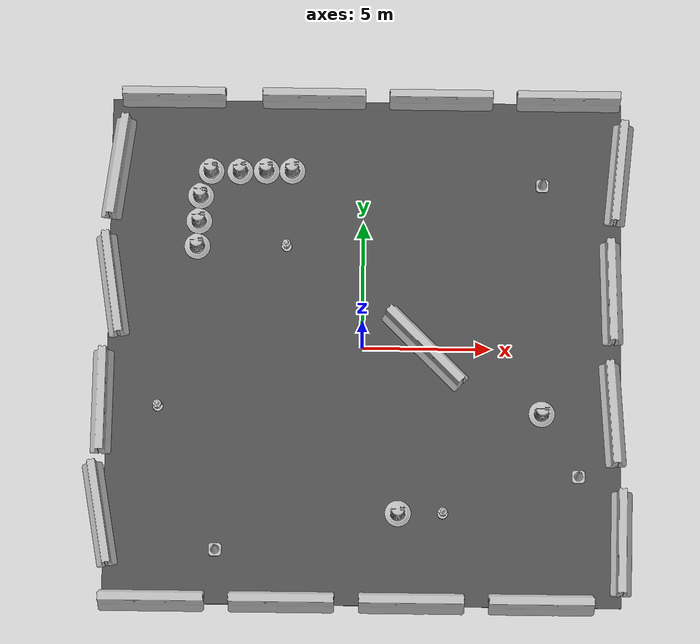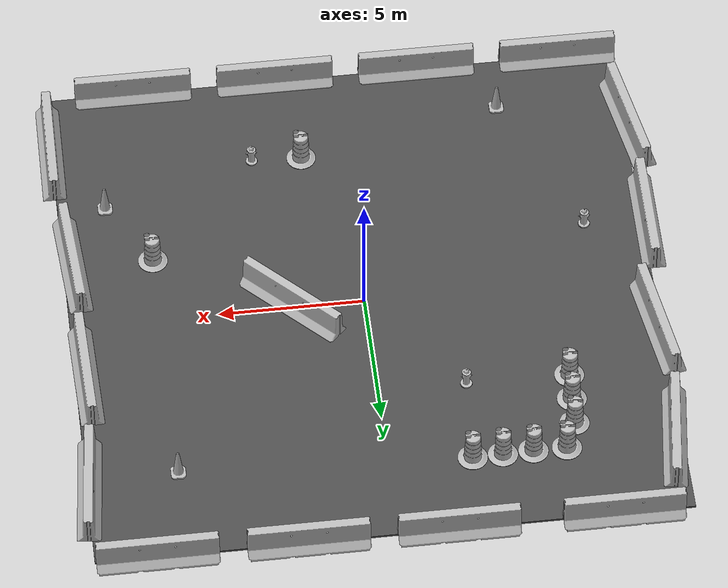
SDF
<sdf version="1.6">
 <world name="default">
  <light name="sun" type="directional">
   <pose>0 0 10 0 -0 0</pose>
   <diffuse>0.8 0.8 0.8 1</diffuse>
   <specular>0.2 0.2 0.2 1</specular>
   <attenuation>
    <range>1000</range>
    <constant>0.9</constant>
    <linear>0.01</linear>
    <quadratic>0.001</quadratic>
   </attenuation>
   <direction>-0.5 0.1 -0.9</direction>
  </light>
  <model name="ground_plane">
   <static>1</static>
   <link name="link">
    <collision name="collision">
     <geometry><plane><normal>0 0 1</normal><size>100 100</size></plane></geometry>
     <surface><friction><ode><mu>100</mu><mu2>50</mu2></ode></friction></surface>
    </collision>
    <visual name="visual">
     <cast_shadows>0</cast_shadows>
     <geometry><plane><normal>0 0 1</normal><size>100 100</size></plane></geometry>
     <material>
      <script><uri>file://media/materials/scripts/gazebo.material</uri><name>Gazebo/Grey</name></script>
     </material>
    </visual>
    <velocity_decay><linear>0</linear><angular>0</angular></velocity_decay>
   </link>
  </model>
  <physics name="default_physics" default="0" type="ode">
   <max_step_size>0.004</max_step_size>
   <real_time_factor>1</real_time_factor>
   <real_time_update_rate>250</real_time_update_rate>
  </physics>
  <scene><ambient>0.4 0.4 0.4 1</ambient><background>0.7 0.7 0.7 1</background><shadows>1</shadows></scene>
  <model name="jersey_barrier">
   <static>1</static>
   <link name="link">
    <visual name="visual">
     <geometry><mesh><uri>model://jersey_barrier/meshes/jersey_barrier.dae</uri></mesh></geometry>
    </visual>
    <collision name="upright">
     <pose>0 0 0.5715 0 -0 0</pose>
     <geometry><box><size>4.06542 0.3063 1.143</size></box></geometry>
    </collision>
    <collision name="base">
     <pose>0 0 0.032258 0 -0 0</pose>
     <geometry><box><size>4.06542 0.8107 0.064516</size></box></geometry>
    </collision>
    <collision name="base2">
     <pose>0 0 0.1 0 -0 0</pose>
     <geometry><box><size>4.06542 0.65 0.1</size></box></geometry>
    </collision>
    <collision name="base3">
     <pose>0 0 0.2 0 -0 0</pose>
     <geometry><box><size>4.06542 0.5 0.1</size></box></geometry>
    </collision>
    <collision name="left-angle">
     <pose>0 -0.224 0.2401 0.9 -0 0</pose>
     <geometry><box><size>4.06542 0.5 0.064516</size></box></geometry>
    </collision>
    <collision name="right-angle">
     <pose>0 0.224 0.2401 -0.9 0 0</pose>
     <geometry><box><size>4.06542 0.5 0.064516</size></box></geometry>
    </collision>
    <velocity_decay><linear>0</linear><angular>0</angular></velocity_decay>
   </link>
   <pose>-8 -10 0 0 -0 0</pose>
  </model>
  <model name="jersey_barrier_0">
   <static>1</static>
   <link name="link">
    <visual name="visual">
     <geometry><mesh><uri>model://jersey_barrier/meshes/jersey_barrier.dae</uri></mesh></geometry>
    </visual>
    <collision name="upright">
     <pose>0 0 0.5715 0 -0 0</pose>
     <geometry><box><size>4.06542 0.3063 1.143</size></box></geometry>
    </collision>
    <collision name="base">
     <pose>0 0 0.032258 0 -0 0</pose>
     <geometry><box><size>4.06542 0.8107 0.064516</size></box></geometry>
    </collision>
    <collision name="base2">
     <pose>0 0 0.1 0 -0 0</pose>
     <geometry><box><size>4.06542 0.65 0.1</size></box></geometry>
    </collision>
    <collision name="base3">
     <pose>0 0 0.2 0 -0 0</pose>
     <geometry><box><size>4.06542 0.5 0.1</size></box></geometry>
    </collision>
    <collision name="left-angle">
     <pose>0 -0.224 0.2401 0.9 -0 0</pose>
     <geometry><box><size>4.06542 0.5 0.064516</size></box></geometry>
    </collision>
    <collision name="right-angle">
     <pose>0 0.224 0.2401 -0.9 0 0</pose>
     <geometry><box><size>4.06542 0.5 0.064516</size></box></geometry>
    </collision>
    <velocity_decay><linear>0</linear><angular>0</angular></velocity_decay>
   </link>
   <pose>-3 -10 0 0 -0 0</pose>
  </model>
  <model name="jersey_barrier_1">
   <static>1</static>
   <link name="link">
    <visual name="visual">
     <geometry><mesh><uri>model://jersey_barrier/meshes/jersey_barrier.dae</uri></mesh></geometry>
    </visual>
    <collision name="upright">
     <pose>0 0 0.5715 0 -0 0</pose>
     <geometry><box><size>4.06542 0.3063 1.143</size></box></geometry>
    </collision>
    <collision name="base">
     <pose>0 0 0.032258 0 -0 0</pose>
     <geometry><box><size>4.06542 0.8107 0.064516</size></box></geometry>
    </collision>
    <collision name="base2">
     <pose>0 0 0.1 0 -0 0</pose>
     <geometry><box><size>4.06542 0.65 0.1</size></box></geometry>
    </collision>
    <collision name="base3">
     <pose>0 0 0.2 0 -0 0</pose>
     <geometry><box><size>4.06542 0.5 0.1</size></box></geometry>
    </collision>
    <collision name="left-angle">
     <pose>0 -0.224 0.2401 0.9 -0 0</pose>
     <geometry><box><size>4.06542 0.5 0.064516</size></box></geometry>
    </collision>
    <collision name="right-angle">
     <pose>0 0.224 0.2401 -0.9 0 0</pose>
     <geometry><box><size>4.06542 0.5 0.064516</size></box></geometry>
    </collision>
    <velocity_decay><linear>0</linear><angular>0</angular></velocity_decay>
   </link>
   <pose>2 -10 0 0 -0 0</pose>
  </model>
  <model name="jersey_barrier_2">
   <static>1</static>
   <link name="link">
    <visual name="visual">
     <geometry><mesh><uri>model://jersey_barrier/meshes/jersey_barrier.dae</uri></mesh></geometry>
    </visual>
    <collision name="upright">
     <pose>0 0 0.5715 0 -0 0</pose>
     <geometry><box><size>4.06542 0.3063 1.143</size></box></geometry>
    </collision>
    <collision name="base">
     <pose>0 0 0.032258 0 -0 0</pose>
     <geometry><box><size>4.06542 0.8107 0.064516</size></box></geometry>
    </collision>
    <collision name="base2">
     <pose>0 0 0.1 0 -0 0</pose>
     <geometry><box><size>4.06542 0.65 0.1</size></box></geometry>
    </collision>
    <collision name="base3">
     <pose>0 0 0.2 0 -0 0</pose>
     <geometry><box><size>4.06542 0.5 0.1</size></box></geometry>
    </collision>
    <collision name="left-angle">
     <pose>0 -0.224 0.2401 0.9 -0 0</pose>
     <geometry><box><size>4.06542 0.5 0.064516</size></box></geometry>
    </collision>
    <collision name="right-angle">
     <pose>0 0.224 0.2401 -0.9 0 0</pose>
     <geometry><box><size>4.06542 0.5 0.064516</size></box></geometry>
    </collision>
    <velocity_decay><linear>0</linear><angular>0</angular></velocity_decay>
   </link>
   <pose>7 -10 0 0 -0 0</pose>
  </model>
  <model name="jersey_barrier_3">
   <static>1</static>
   <link name="link">
    <visual name="visual">
     <geometry><mesh><uri>model://jersey_barrier/meshes/jersey_barrier.dae</uri></mesh></geometry>
    </visual>
    <collision name="upright">
     <pose>0 0 0.5715 0 -0 0</pose>
     <geometry><box><size>4.06542 0.3063 1.143</size></box></geometry>
    </collision>
    <collision name="base">
     <pose>0 0 0.032258 0 -0 0</pose>
     <geometry><box><size>4.06542 0.8107 0.064516</size></box></geometry>
    </collision>
    <collision name="base2">
     <pose>0 0 0.1 0 -0 0</pose>
     <geometry><box><size>4.06542 0.65 0.1</size></box></geometry>
    </collision>
    <collision name="base3">
     <pose>0 0 0.2 0 -0 0</pose>
     <geometry><box><size>4.06542 0.5 0.1</size></box></geometry>
    </collision>
    <collision name="left-angle">
     <pose>0 -0.224 0.2401 0.9 -0 0</pose>
     <geometry><box><size>4.06542 0.5 0.064516</size></box></geometry>
    </collision>
    <collision name="right-angle">
     <pose>0 0.224 0.2401 -0.9 0 0</pose>
     <geometry><box><size>4.06542 0.5 0.064516</size></box></geometry>
    </collision>
    <velocity_decay><linear>0</linear><angular>0</angular></velocity_decay>
   </link>
   <pose>-7.50675 10 0 0 -0 0</pose>
  </model>
  <model name="jersey_barrier_4">
   <static>1</static>
   <link name="link">
    <visual name="visual">
     <geometry><mesh><uri>model://jersey_barrier/meshes/jersey_barrier.dae</uri></mesh></geometry>
    </visual>
    <collision name="upright">
     <pose>0 0 0.5715 0 -0 0</pose>
     <geometry><box><size>4.06542 0.3063 1.143</size></box></geometry>
    </collision>
    <collision name="base">
     <pose>0 0 0.032258 0 -0 0</pose>
     <geometry><box><size>4.06542 0.8107 0.064516</size></box></geometry>
    </collision>
    <collision name="base2">
     <pose>0 0 0.1 0 -0 0</pose>
     <geometry><box><size>4.06542 0.65 0.1</size></box></geometry>
    </collision>
    <collision name="base3">
     <pose>0 0 0.2 0 -0 0</pose>
     <geometry><box><size>4.06542 0.5 0.1</size></box></geometry>
    </collision>
    <collision name="left-angle">
     <pose>0 -0.224 0.2401 0.9 -0 0</pose>
     <geometry><box><size>4.06542 0.5 0.064516</size></box></geometry>
    </collision>
    <collision name="right-angle">
     <pose>0 0.224 0.2401 -0.9 0 0</pose>
     <geometry><box><size>4.06542 0.5 0.064516</size></box></geometry>
    </collision>
    <velocity_decay><linear>0</linear><angular>0</angular></velocity_decay>
   </link>
   <pose>-2 10 0 0 -0 0</pose>
  </model>
  <model name="jersey_barrier_5">
   <static>1</static>
   <link name="link">
    <visual name="visual">
     <geometry><mesh><uri>model://jersey_barrier/meshes/jersey_barrier.dae</uri></mesh></geometry>
    </visual>
    <collision name="upright">
     <pose>0 0 0.5715 0 -0 0</pose>
     <geometry><box><size>4.06542 0.3063 1.143</size></box></geometry>
    </collision>
    <collision name="base">
     <pose>0 0 0.032258 0 -0 0</pose>
     <geometry><box><size>4.06542 0.8107 0.064516</size></box></geometry>
    </collision>
    <collision name="base2">
     <pose>0 0 0.1 0 -0 0</pose>
     <geometry><box><size>4.06542 0.65 0.1</size></box></geometry>
    </collision>
    <collision name="base3">
     <pose>0 0 0.2 0 -0 0</pose>
     <geometry><box><size>4.06542 0.5 0.1</size></box></geometry>
    </collision>
    <collision name="left-angle">
     <pose>0 -0.224 0.2401 0.9 -0 0</pose>
     <geometry><box><size>4.06542 0.5 0.064516</size></box></geometry>
    </collision>
    <collision name="right-angle">
     <pose>0 0.224 0.2401 -0.9 0 0</pose>
     <geometry><box><size>4.06542 0.5 0.064516</size></box></geometry>
    </collision>
    <velocity_decay><linear>0</linear><angular>0</angular></velocity_decay>
   </link>
   <pose>3 10 0 0 -0 0</pose>
  </model>
  <model name="jersey_barrier_6">
   <static>1</static>
   <link name="link">
    <visual name="visual">
     <geometry><mesh><uri>model://jersey_barrier/meshes/jersey_barrier.dae</uri></mesh></geometry>
    </visual>
    <collision name="upright">
     <pose>0 0 0.5715 0 -0 0</pose>
     <geometry><box><size>4.06542 0.3063 1.143</size></box></geometry>
    </collision>
    <collision name="base">
     <pose>0 0 0.032258 0 -0 0</pose>
     <geometry><box><size>4.06542 0.8107 0.064516</size></box></geometry>
    </collision>
    <collision name="base2">
     <pose>0 0 0.1 0 -0 0</pose>
     <geometry><box><size>4.06542 0.65 0.1</size></box></geometry>
    </collision>
    <collision name="base3">
     <pose>0 0 0.2 0 -0 0</pose>
     <geometry><box><size>4.06542 0.5 0.1</size></box></geometry>
    </collision>
    <collision name="left-angle">
     <pose>0 -0.224 0.2401 0.9 -0 0</pose>
     <geometry><box><size>4.06542 0.5 0.064516</size></box></geometry>
    </collision>
    <collision name="right-angle">
     <pose>0 0.224 0.2401 -0.9 0 0</pose>
     <geometry><box><size>4.06542 0.5 0.064516</size></box></geometry>
    </collision>
    <velocity_decay><linear>0</linear><angular>0</angular></velocity_decay>
   </link>
   <pose>8 10 0 0 -0 0</pose>
  </model>
  <model name="jersey_barrier_7">
   <static>1</static>
   <link name="link">
    <visual name="visual">
     <geometry><mesh><uri>model://jersey_barrier/meshes/jersey_barrier.dae</uri></mesh></geometry>
    </visual>
    <collision name="upright">
     <pose>0 0 0.5715 0 -0 0</pose>
     <geometry><box><size>4.06542 0.3063 1.143</size></box></geometry>
    </collision>
    <collision name="base">
     <pose>0 0 0.032258 0 -0 0</pose>
     <geometry><box><size>4.06542 0.8107 0.064516</size></box></geometry>
    </collision>
    <collision name="base2">
     <pose>0 0 0.1 0 -0 0</pose>
     <geometry><box><size>4.06542 0.65 0.1</size></box></geometry>
    </collision>
    <collision name="base3">
     <pose>0 0 0.2 0 -0 0</pose>
     <geometry><box><size>4.06542 0.5 0.1</size></box></geometry>
    </collision>
    <collision name="left-angle">
     <pose>0 -0.224 0.2401 0.9 -0 0</pose>
     <geometry><box><size>4.06542 0.5 0.064516</size></box></geometry>
    </collision>
    <collision name="right-angle">
     <pose>0 0.224 0.2401 -0.9 0 0</pose>
     <geometry><box><size>4.06542 0.5 0.064516</size></box></geometry>
    </collision>
    <velocity_decay><linear>0</linear><angular>0</angular></velocity_decay>
   </link>
   <pose>9.74902 -2.57759 0 0 -0 1.64</pose>
  </model>
  <model name="jersey_barrier_8">
   <static>1</static>
   <link name="link">
    <visual name="visual">
     <geometry><mesh><uri>model://jersey_barrier/meshes/jersey_barrier.dae</uri></mesh></geometry>
    </visual>
    <collision name="upright">
     <pose>0 0 0.5715 0 -0 0</pose>
     <geometry><box><size>4.06542 0.3063 1.143</size></box></geometry>
    </collision>
    <collision name="base">
     <pose>0 0 0.032258 0 -0 0</pose>
     <geometry><box><size>4.06542 0.8107 0.064516</size></box></geometry>
    </collision>
    <collision name="base2">
     <pose>0 0 0.1 0 -0 0</pose>
     <geometry><box><size>4.06542 0.65 0.1</size></box></geometry>
    </collision>
    <collision name="base3">
     <pose>0 0 0.2 0 -0 0</pose>
     <geometry><box><size>4.06542 0.5 0.1</size></box></geometry>
    </collision>
    <collision name="left-angle">
     <pose>0 -0.224 0.2401 0.9 -0 0</pose>
     <geometry><box><size>4.06542 0.5 0.064516</size></box></geometry>
    </collision>
    <collision name="right-angle">
     <pose>0 0.224 0.2401 -0.9 0 0</pose>
     <geometry><box><size>4.06542 0.5 0.064516</size></box></geometry>
    </collision>
    <velocity_decay><linear>0</linear><angular>0</angular></velocity_decay>
   </link>
   <pose>9.70141 2.24369 0 0 -0 1.6</pose>
  </model>
  <model name="jersey_barrier_9">
   <static>1</static>
   <link name="link">
    <visual name="visual">
     <geometry><mesh><uri>model://jersey_barrier/meshes/jersey_barrier.dae</uri></mesh></geometry>
    </visual>
    <collision name="upright">
     <pose>0 0 0.5715 0 -0 0</pose>
     <geometry><box><size>4.06542 0.3063 1.143</size></box></geometry>
    </collision>
    <collision name="base">
     <pose>0 0 0.032258 0 -0 0</pose>
     <geometry><box><size>4.06542 0.8107 0.064516</size></box></geometry>
    </collision>
    <collision name="base2">
     <pose>0 0 0.1 0 -0 0</pose>
     <geometry><box><size>4.06542 0.65 0.1</size></box></geometry>
    </collision>
    <collision name="base3">
     <pose>0 0 0.2 0 -0 0</pose>
     <geometry><box><size>4.06542 0.5 0.1</size></box></geometry>
    </collision>
    <collision name="left-angle">
     <pose>0 -0.224 0.2401 0.9 -0 0</pose>
     <geometry><box><size>4.06542 0.5 0.064516</size></box></geometry>
    </collision>
    <collision name="right-angle">
     <pose>0 0.224 0.2401 -0.9 0 0</pose>
     <geometry><box><size>4.06542 0.5 0.064516</size></box></geometry>
    </collision>
    <velocity_decay><linear>0</linear><angular>0</angular></velocity_decay>
   </link>
   <pose>-10.0607 -6.69856 0 0 0 -1.4</pose>
  </model>
  <model name="jersey_barrier_10">
   <static>1</static>
   <link name="link">
    <visual name="visual">
     <geometry><mesh><uri>model://jersey_barrier/meshes/jersey_barrier.dae</uri></mesh></geometry>
    </visual>
    <collision name="upright">
     <pose>0 0 0.5715 0 -0 0</pose>
     <geometry><box><size>4.06542 0.3063 1.143</size></box></geometry>
    </collision>
    <collision name="base">
     <pose>0 0 0.032258 0 -0 0</pose>
     <geometry><box><size>4.06542 0.8107 0.064516</size></box></geometry>
    </collision>
    <collision name="base2">
     <pose>0 0 0.1 0 -0 0</pose>
     <geometry><box><size>4.06542 0.65 0.1</size></box></geometry>
    </collision>
    <collision name="base3">
     <pose>0 0 0.2 0 -0 0</pose>
     <geometry><box><size>4.06542 0.5 0.1</size></box></geometry>
    </collision>
    <collision name="left-angle">
     <pose>0 -0.224 0.2401 0.9 -0 0</pose>
     <geometry><box><size>4.06542 0.5 0.064516</size></box></geometry>
    </collision>
    <collision name="right-angle">
     <pose>0 0.224 0.2401 -0.9 0 0</pose>
     <geometry><box><size>4.06542 0.5 0.064516</size></box></geometry>
    </collision>
    <velocity_decay><linear>0</linear><angular>0</angular></velocity_decay>
   </link>
   <pose>-10.0774 -2.27159 0 0 -0 1.56</pose>
  </model>
  <model name="jersey_barrier_11">
   <static>1</static>
   <link name="link">
    <visual name="visual">
     <geometry><mesh><uri>model://jersey_barrier/meshes/jersey_barrier.dae</uri></mesh></geometry>
    </visual>
    <collision name="upright">
     <pose>0 0 0.5715 0 -0 0</pose>
     <geometry><box><size>4.06542 0.3063 1.143</size></box></geometry>
    </collision>
    <collision name="base">
     <pose>0 0 0.032258 0 -0 0</pose>
     <geometry><box><size>4.06542 0.8107 0.064516</size></box></geometry>
    </collision>
    <collision name="base2">
     <pose>0 0 0.1 0 -0 0</pose>
     <geometry><box><size>4.06542 0.65 0.1</size></box></geometry>
    </collision>
    <collision name="base3">
     <pose>0 0 0.2 0 -0 0</pose>
     <geometry><box><size>4.06542 0.5 0.1</size></box></geometry>
    </collision>
    <collision name="left-angle">
     <pose>0 -0.224 0.2401 0.9 -0 0</pose>
     <geometry><box><size>4.06542 0.5 0.064516</size></box></geometry>
    </collision>
    <collision name="right-angle">
     <pose>0 0.224 0.2401 -0.9 0 0</pose>
     <geometry><box><size>4.06542 0.5 0.064516</size></box></geometry>
    </collision>
    <velocity_decay><linear>0</linear><angular>0</angular></velocity_decay>
   </link>
   <pose>-9.77013 2.34791 0 0 -0 1.72</pose>
  </model>
  <model name="jersey_barrier_12">
   <static>1</static>
   <link name="link">
    <visual name="visual">
     <geometry><mesh><uri>model://jersey_barrier/meshes/jersey_barrier.dae</uri></mesh></geometry>
    </visual>
    <collision name="upright">
     <pose>0 0 0.5715 0 -0 0</pose>
     <geometry><box><size>4.06542 0.3063 1.143</size></box></geometry>
    </collision>
    <collision name="base">
     <pose>0 0 0.032258 0 -0 0</pose>
     <geometry><box><size>4.06542 0.8107 0.064516</size></box></geometry>
    </collision>
    <collision name="base2">
     <pose>0 0 0.1 0 -0 0</pose>
     <geometry><box><size>4.06542 0.65 0.1</size></box></geometry>
    </collision>
    <collision name="base3">
     <pose>0 0 0.2 0 -0 0</pose>
     <geometry><box><size>4.06542 0.5 0.1</size></box></geometry>
    </collision>
    <collision name="left-angle">
     <pose>0 -0.224 0.2401 0.9 -0 0</pose>
     <geometry><box><size>4.06542 0.5 0.064516</size></box></geometry>
    </collision>
    <collision name="right-angle">
     <pose>0 0.224 0.2401 -0.9 0 0</pose>
     <geometry><box><size>4.06542 0.5 0.064516</size></box></geometry>
    </collision>
    <velocity_decay><linear>0</linear><angular>0</angular></velocity_decay>
   </link>
   <pose>10.0879 -7.62159 0 0 -0 1.56</pose>
  </model>
  <model name="jersey_barrier_13">
   <static>1</static>
   <link name="link">
    <visual name="visual">
     <geometry><mesh><uri>model://jersey_barrier/meshes/jersey_barrier.dae</uri></mesh></geometry>
    </visual>
    <collision name="upright">
     <pose>0 0 0.5715 0 -0 0</pose>
     <geometry><box><size>4.06542 0.3063 1.143</size></box></geometry>
    </collision>
    <collision name="base">
     <pose>0 0 0.032258 0 -0 0</pose>
     <geometry><box><size>4.06542 0.8107 0.064516</size></box></geometry>
    </collision>
    <collision name="base2">
     <pose>0 0 0.1 0 -0 0</pose>
     <geometry><box><size>4.06542 0.65 0.1</size></box></geometry>
    </collision>
    <collision name="base3">
     <pose>0 0 0.2 0 -0 0</pose>
     <geometry><box><size>4.06542 0.5 0.1</size></box></geometry>
    </collision>
    <collision name="left-angle">
     <pose>0 -0.224 0.2401 0.9 -0 0</pose>
     <geometry><box><size>4.06542 0.5 0.064516</size></box></geometry>
    </collision>
    <collision name="right-angle">
     <pose>0 0.224 0.2401 -0.9 0 0</pose>
     <geometry><box><size>4.06542 0.5 0.064516</size></box></geometry>
    </collision>
    <velocity_decay><linear>0</linear><angular>0</angular></velocity_decay>
   </link>
   <pose>10 7 0 0 -0 1.48</pose>
  </model>
  <model name="jersey_barrier_14">
   <static>1</static>
   <link name="link">
    <visual name="visual">
     <geometry><mesh><uri>model://jersey_barrier/meshes/jersey_barrier.dae</uri></mesh></geometry>
    </visual>
    <collision name="upright">
     <pose>0 0 0.5715 0 -0 0</pose>
     <geometry><box><size>4.06542 0.3063 1.143</size></box></geometry>
    </collision>
    <collision name="base">
     <pose>0 0 0.032258 0 -0 0</pose>
     <geometry><box><size>4.06542 0.8107 0.064516</size></box></geometry>
    </collision>
    <collision name="base2">
     <pose>0 0 0.1 0 -0 0</pose>
     <geometry><box><size>4.06542 0.65 0.1</size></box></geometry>
    </collision>
    <collision name="base3">
     <pose>0 0 0.2 0 -0 0</pose>
     <geometry><box><size>4.06542 0.5 0.1</size></box></geometry>
    </collision>
    <collision name="left-angle">
     <pose>0 -0.224 0.2401 0.9 -0 0</pose>
     <geometry><box><size>4.06542 0.5 0.064516</size></box></geometry>
    </collision>
    <collision name="right-angle">
     <pose>0 0.224 0.2401 -0.9 0 0</pose>
     <geometry><box><size>4.06542 0.5 0.064516</size></box></geometry>
    </collision>
    <velocity_decay><linear>0</linear><angular>0</angular></velocity_decay>
   </link>
   <pose>-9.64482 7.05946 0 0 -0 1.44</pose>
  </model>
  <model name="fire_hydrant">
   <static>1</static>
   <link name="link">
    <collision name="collision">
     <geometry><mesh><uri>model://fire_hydrant/meshes/fire_hydrant.dae</uri></mesh></geometry>
    </collision>
    <visual name="visual">
     <geometry><mesh><uri>model://fire_hydrant/meshes/fire_hydrant.dae</uri></mesh></geometry>
    </visual>
    <velocity_decay><linear>0</linear><angular>0</angular></velocity_decay>
   </link>
   <pose>3.18024 -6.51118 0 0 -0 0</pose>
  </model>
  <model name="fire_hydrant_0">
   <static>1</static>
   <link name="link">
    <collision name="collision">
     <geometry><mesh><uri>model://fire_hydrant/meshes/fire_hydrant.dae</uri></mesh></geometry>
    </collision>
    <visual name="visual">
     <geometry><mesh><uri>model://fire_hydrant/meshes/fire_hydrant.dae</uri></mesh></geometry>
    </visual>
    <velocity_decay><linear>0</linear><angular>0</angular></velocity_decay>
   </link>
   <pose>-3 4 0 0 -0 0</pose>
  </model>
  <model name="fire_hydrant_1">
   <static>1</static>
   <link name="link">
    <collision name="collision">
     <geometry><mesh><uri>model://fire_hydrant/meshes/fire_hydrant.dae</uri></mesh></geometry>
    </collision>
    <visual name="visual">
     <geometry><mesh><uri>model://fire_hydrant/meshes/fire_hydrant.dae</uri></mesh></geometry>
    </visual>
    <velocity_decay><linear>0</linear><angular>0</angular></velocity_decay>
   </link>
   <pose>-7.90686 -2.41363 0 0 -0 0</pose>
  </model>
  <model name="jersey_barrier_15">
   <static>1</static>
   <link name="link">
    <visual name="visual">
     <geometry><mesh><uri>model://jersey_barrier/meshes/jersey_barrier.dae</uri></mesh></geometry>
    </visual>
    <collision name="upright">
     <pose>0 0 0.5715 0 -0 0</pose>
     <geometry><box><size>4.06542 0.3063 1.143</size></box></geometry>
    </collision>
    <collision name="base">
     <pose>0 0 0.032258 0 -0 0</pose>
     <geometry><box><size>4.06542 0.8107 0.064516</size></box></geometry>
    </collision>
    <collision name="base2">
     <pose>0 0 0.1 0 -0 0</pose>
     <geometry><box><size>4.06542 0.65 0.1</size></box></geometry>
    </collision>
    <collision name="base3">
     <pose>0 0 0.2 0 -0 0</pose>
     <geometry><box><size>4.06542 0.5 0.1</size></box></geometry>
    </collision>
    <collision name="left-angle">
     <pose>0 -0.224 0.2401 0.9 -0 0</pose>
     <geometry><box><size>4.06542 0.5 0.064516</size></box></geometry>
    </collision>
    <collision name="right-angle">
     <pose>0 0.224 0.2401 -0.9 0 0</pose>
     <geometry><box><size>4.06542 0.5 0.064516</size></box></geometry>
    </collision>
    <velocity_decay><linear>0</linear><angular>0</angular></velocity_decay>
   </link>
   <pose>2.45495 0 0 0 -0 2.36</pose>
  </model>
  <model name="Construction Cone">
   <link name="link">
    <collision name="collision">
     <geometry>
      <mesh><scale>10 10 10</scale><uri>model://construction_cone/meshes/construction_cone.dae</uri></mesh>
     </geometry>
    </collision>
    <visual name="visual">
     <geometry>
      <mesh><scale>10 10 10</scale><uri>model://construction_cone/meshes/construction_cone.dae</uri></mesh>
     </geometry>
    </visual>
    <velocity_decay><linear>0</linear><angular>0</angular></velocity_decay>
    <inertial>
     <inertia><ixx>1</ixx><ixy>0</ixy><ixz>0</ixz><iyy>1</iyy><iyz>0</iyz><izz>1</izz></inertia>
     <mass>1</mass>
    </inertial>
   </link>
   <pose>-5.59121 -8 0.05 2e-06 -1e-06 -0</pose>
   <static>0</static>
  </model>
  <model name="Construction Barrel">
   <link name="link">
    <inertial>
     <pose>0 0 0.4 0 -0 0</pose>
     <mass>500</mass>
     <inertia><ixx>51.2096</ixx><iyy>51.2096</iyy><izz>25</izz><ixy>0</ixy><ixz>0</ixz><iyz>0</iyz></inertia>
    </inertial>
    <collision name="collision">
     <geometry><mesh><uri>model://construction_barrel/meshes/construction_barrel.dae</uri></mesh></geometry>
    </collision>
    <visual name="visual">
     <geometry><mesh><uri>model://construction_barrel/meshes/construction_barrel.dae</uri></mesh></geometry>
    </visual>
    <velocity_decay><linear>0</linear><angular>0</angular></velocity_decay>
   </link>
   <pose>7.00007 -2.54634 0.049992 -1.7e-05 -3.6e-05 0.000416</pose>
   <static>0</static>
  </model>
  <model name="Construction Cone_0">
   <link name="link">
    <collision name="collision">
     <geometry>
      <mesh><scale>10 10 10</scale><uri>model://construction_cone/meshes/construction_cone.dae</uri></mesh>
     </geometry>
    </collision>
    <visual name="visual">
     <geometry>
      <mesh><scale>10 10 10</scale><uri>model://construction_cone/meshes/construction_cone.dae</uri></mesh>
     </geometry>
    </visual>
    <velocity_decay><linear>0</linear><angular>0</angular></velocity_decay>
    <inertial>
     <inertia><ixx>1</ixx><ixy>0</ixy><ixz>0</ixz><iyy>1</iyy><iyz>0</iyz><izz>1</izz></inertia>
     <mass>1</mass>
    </inertial>
   </link>
   <pose>6.99685 6.55732 0.049993 -3.2e-05 -7e-06 -0.007012</pose>
   <static>0</static>
  </model>
  <model name="Construction Barrel_0">
   <link name="link">
    <inertial>
     <pose>0 0 0.4 0 -0 0</pose>
     <mass>500</mass>
     <inertia><ixx>51.2096</ixx><iyy>51.2096</iyy><izz>25</izz><ixy>0</ixy><ixz>0</ixz><iyz>0</iyz></inertia>
    </inertial>
    <collision name="collision">
     <geometry><mesh><uri>model://construction_barrel/meshes/construction_barrel.dae</uri></mesh></geometry>
    </collision>
    <visual name="visual">
     <geometry><mesh><uri>model://construction_barrel/meshes/construction_barrel.dae</uri></mesh></geometry>
    </visual>
    <velocity_decay><linear>0</linear><angular>0</angular></velocity_decay>
   </link>
   <pose>1.4518 -6.51125 0.049985 5.5e-05 1e-06 8.9e-05</pose>
   <static>0</static>
  </model>
  <model name="asphalt_plane">
   <static>1</static>
   <link name="link">
    <collision name="collision"><geometry><box><size>20 20 0.1</size></box></geometry></collision>
    <visual name="visual">
     <cast_shadows>0</cast_shadows>
     <geometry><box><size>20 20 0.1</size></box></geometry>
     <material>
      <script>
       <uri>model://asphalt_plane/materials/scripts</uri>
       <uri>model://asphalt_plane/materials/textures</uri>
       <name>vrc/asphalt</name>
      </script>
     </material>
    </visual>
    <velocity_decay><linear>0</linear><angular>0</angular></velocity_decay>
   </link>
   <pose>0.076733 -0.110379 0 0 -0 0</pose>
  </model>
  <model name="Construction Barrel_1">
   <link name="link">
    <inertial>
     <pose>0 0 0.4 0 -0 0</pose>
     <mass>500</mass>
     <inertia><ixx>51.2096</ixx><iyy>51.2096</iyy><izz>25</izz><ixy>0</ixy><ixz>0</ixz><iyz>0</iyz></inertia>
    </inertial>
    <collision name="collision">
     <geometry><mesh><uri>model://construction_barrel/meshes/construction_barrel.dae</uri></mesh></geometry>
    </collision>
    <visual name="visual">
     <geometry><mesh><uri>model://construction_barrel/meshes/construction_barrel.dae</uri></mesh></geometry>
    </visual>
    <velocity_decay><linear>0</linear><angular>0</angular></velocity_decay>
   </link>
   <pose>-6.50478 3.98263 0.049992 -1.7e-05 -3.6e-05 -0.009591</pose>
   <static>0</static>
  </model>
  <model name="Construction Barrel_2">
   <link name="link">
    <inertial>
     <pose>0 0 0.4 0 -0 0</pose>
     <mass>500</mass>
     <inertia><ixx>51.2096</ixx><iyy>51.2096</iyy><izz>25</izz><ixy>0</ixy><ixz>0</ixz><iyz>0</iyz></inertia>
    </inertial>
    <collision name="collision">
     <geometry><mesh><uri>model://construction_barrel/meshes/construction_barrel.dae</uri></mesh></geometry>
    </collision>
    <visual name="visual">
     <geometry><mesh><uri>model://construction_barrel/meshes/construction_barrel.dae</uri></mesh></geometry>
    </visual>
    <velocity_decay><linear>0</linear><angular>0</angular></velocity_decay>
   </link>
   <pose>-6.45063 4.99641 0.049985 5.7e-05 1e-06 0.065011</pose>
   <static>0</static>
  </model>
  <model name="Construction Barrel_3">
   <link name="link">
    <inertial>
     <pose>0 0 0.4 0 -0 0</pose>
     <mass>500</mass>
     <inertia><ixx>51.2096</ixx><iyy>51.2096</iyy><izz>25</izz><ixy>0</ixy><ixz>0</ixz><iyz>0</iyz></inertia>
    </inertial>
    <collision name="collision">
     <geometry><mesh><uri>model://construction_barrel/meshes/construction_barrel.dae</uri></mesh></geometry>
    </collision>
    <visual name="visual">
     <geometry><mesh><uri>model://construction_barrel/meshes/construction_barrel.dae</uri></mesh></geometry>
    </visual>
    <velocity_decay><linear>0</linear><angular>0</angular></velocity_decay>
   </link>
   <pose>-6.40171 6.01112 0.049985 5.8e-05 1e-06 -0.120697</pose>
   <static>0</static>
  </model>
  <model name="Construction Barrel_4">
   <link name="link">
    <inertial>
     <pose>0 0 0.4 0 -0 0</pose>
     <mass>500</mass>
     <inertia><ixx>51.2096</ixx><iyy>51.2096</iyy><izz>25</izz><ixy>0</ixy><ixz>0</ixz><iyz>0</iyz></inertia>
    </inertial>
    <collision name="collision">
     <geometry><mesh><uri>model://construction_barrel/meshes/construction_barrel.dae</uri></mesh></geometry>
    </collision>
    <visual name="visual">
     <geometry><mesh><uri>model://construction_barrel/meshes/construction_barrel.dae</uri></mesh></geometry>
    </visual>
    <velocity_decay><linear>0</linear><angular>0</angular></velocity_decay>
   </link>
   <pose>-6.00631 7.00882 0.04999 -2e-05 -4.2e-05 -0.049539</pose>
   <static>0</static>
  </model>
  <model name="Construction Barrel_5">
   <link name="link">
    <inertial>
     <pose>0 0 0.4 0 -0 0</pose>
     <mass>500</mass>
     <inertia><ixx>51.2096</ixx><iyy>51.2096</iyy><izz>25</izz><ixy>0</ixy><ixz>0</ixz><iyz>0</iyz></inertia>
    </inertial>
    <collision name="collision">
     <geometry><mesh><uri>model://construction_barrel/meshes/construction_barrel.dae</uri></mesh></geometry>
    </collision>
    <visual name="visual">
     <geometry><mesh><uri>model://construction_barrel/meshes/construction_barrel.dae</uri></mesh></geometry>
    </visual>
    <velocity_decay><linear>0</linear><angular>0</angular></velocity_decay>
   </link>
   <pose>-4.87562 7.00816 0.049992 -1.7e-05 -3.6e-05 0.146219</pose>
   <static>0</static>
  </model>
  <model name="Construction Barrel_6">
   <link name="link">
    <inertial>
     <pose>0 0 0.4 0 -0 0</pose>
     <mass>500</mass>
     <inertia><ixx>51.2096</ixx><iyy>51.2096</iyy><izz>25</izz><ixy>0</ixy><ixz>0</ixz><iyz>0</iyz></inertia>
    </inertial>
    <collision name="collision">
     <geometry><mesh><uri>model://construction_barrel/meshes/construction_barrel.dae</uri></mesh></geometry>
    </collision>
    <visual name="visual">
     <geometry><mesh><uri>model://construction_barrel/meshes/construction_barrel.dae</uri></mesh></geometry>
    </visual>
    <velocity_decay><linear>0</linear><angular>0</angular></velocity_decay>
   </link>
   <pose>-3.84215 7.04131 0.049985 5.7e-05 1e-06 0.026631</pose>
   <static>0</static>
  </model>
  <model name="Construction Barrel_7">
   <link name="link">
    <inertial>
     <pose>0 0 0.4 0 -0 0</pose>
     <mass>500</mass>
     <inertia><ixx>51.2096</ixx><iyy>51.2096</iyy><izz>25</izz><ixy>0</ixy><ixz>0</ixz><iyz>0</iyz></inertia>
    </inertial>
    <collision name="collision">
     <geometry><mesh><uri>model://construction_barrel/meshes/construction_barrel.dae</uri></mesh></geometry>
    </collision>
    <visual name="visual">
     <geometry><mesh><uri>model://construction_barrel/meshes/construction_barrel.dae</uri></mesh></geometry>
    </visual>
    <velocity_decay><linear>0</linear><angular>0</angular></velocity_decay>
   </link>
   <pose>-2.82544 7.05338 0.049992 -1.7e-05 -3.6e-05 0.054906</pose>
   <static>0</static>
  </model>
  <model name="Construction Cone_1">
   <link name="link">
    <collision name="collision">
     <geometry>
      <mesh><scale>10 10 10</scale><uri>model://construction_cone/meshes/construction_cone.dae</uri></mesh>
     </geometry>
    </collision>
    <visual name="visual">
     <geometry>
      <mesh><scale>10 10 10</scale><uri>model://construction_cone/meshes/construction_cone.dae</uri></mesh>
     </geometry>
    </visual>
    <velocity_decay><linear>0</linear><angular>0</angular></velocity_decay>
    <inertial>
     <inertia><ixx>1</ixx><ixy>0</ixy><ixz>0</ixz><iyy>1</iyy><iyz>0</iyz><izz>1</izz></inertia>
     <mass>1</mass>
    </inertial>
   </link>
   <pose>8.42887 -5 0.05 2e-06 -1e-06 -0</pose>
   <static>0</static>
  </model>
  <gravity>0 0 -9.8</gravity>
  <magnetic_field>6e-06 2.3e-05 -4.2e-05</magnetic_field>
  <atmosphere type="adiabatic"/>
  <spherical_coordinates>
   <surface_model>EARTH_WGS84</surface_model>
   <latitude_deg>0</latitude_deg>
   <longitude_deg>0</longitude_deg>
   <elevation>0</elevation>
   <heading_deg>0</heading_deg>
  </spherical_coordinates>
 </world>
</sdf>
